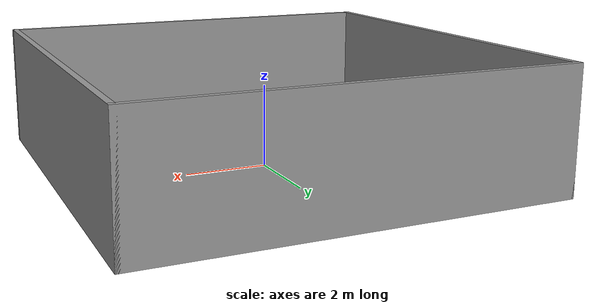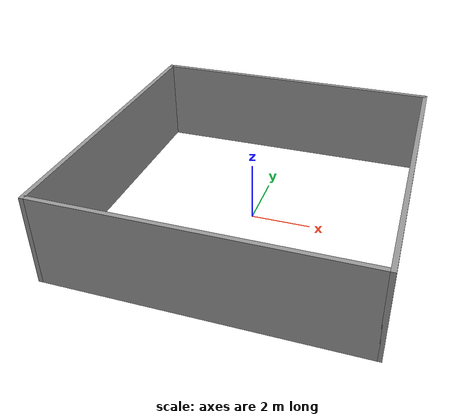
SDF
<?xml version='1.0'?>
<sdf version='1.6'>
  <model name='test_laserfilter'>
    <pose frame=''>0 0 0 0 -0 0</pose>
    <link name='Wall_10'>
      <collision name='Wall_10_Collision'>
        <geometry>
          <box>
            <size>10.15 0.15 3</size>
          </box>
        </geometry>
        <pose frame=''>0 0 1.5 0 -0 0</pose>
      </collision>
      <visual name='Wall_10_Visual'>
        <pose frame=''>0 0 1.5 0 -0 0</pose>
        <geometry>
          <box>
            <size>10.15 0.15 3</size>
          </box>
        </geometry>
        <material>
          <script>
            <uri>file://media/materials/scripts/gazebo.material</uri>
            <name>Gazebo/Grey</name>
          </script>
          <ambient>1 1 1 1</ambient>
        </material>
        <meta>
          <layer>0</layer>
        </meta>
      </visual>
      <pose frame=''>0 5 0 0 -0 0</pose>
    </link>
    <link name='Wall_12'>
      <collision name='Wall_12_Collision'>
        <geometry>
          <box>
            <size>10.15 0.15 3</size>
          </box>
        </geometry>
        <pose frame=''>0 0 1.5 0 -0 0</pose>
      </collision>
      <visual name='Wall_12_Visual'>
        <pose frame=''>0 0 1.5 0 -0 0</pose>
        <geometry>
          <box>
            <size>10.15 0.15 3</size>
          </box>
        </geometry>
        <material>
          <script>
            <uri>file://media/materials/scripts/gazebo.material</uri>
            <name>Gazebo/Grey</name>
          </script>
          <ambient>1 1 1 1</ambient>
        </material>
        <meta>
          <layer>0</layer>
        </meta>
      </visual>
      <pose frame=''>5 0 0 0 -0 -1.5708</pose>
    </link>
    <link name='Wall_6'>
      <collision name='Wall_6_Collision'>
        <geometry>
          <box>
            <size>10.15 0.15 3</size>
          </box>
        </geometry>
        <pose frame=''>0 0 1.5 0 -0 0</pose>
      </collision>
      <visual name='Wall_6_Visual'>
        <pose frame=''>0 0 1.5 0 -0 0</pose>
        <geometry>
          <box>
            <size>10.15 0.15 3</size>
          </box>
        </geometry>
        <material>
          <script>
            <uri>file://media/materials/scripts/gazebo.material</uri>
            <name>Gazebo/Grey</name>
          </script>
          <ambient>1 1 1 1</ambient>
        </material>
        <meta>
          <layer>0</layer>
        </meta>
      </visual>
      <pose frame=''>0 -5 0 0 -0 0</pose>
    </link>
    <link name='Wall_8'>
      <collision name='Wall_8_Collision'>
        <geometry>
          <box>
            <size>10.15 0.15 3</size>
          </box>
        </geometry>
        <pose frame=''>0 0 1.5 0 -0 0</pose>
      </collision>
      <visual name='Wall_8_Visual'>
        <pose frame=''>0 0 1.5 0 -0 0</pose>
        <geometry>
          <box>
            <size>10.15 0.15 3</size>
          </box>
        </geometry>
        <material>
          <script>
            <uri>file://media/materials/scripts/gazebo.material</uri>
            <name>Gazebo/Grey</name>
          </script>
          <ambient>1 1 1 1</ambient>
        </material>
        <meta>
          <layer>0</layer>
        </meta>
      </visual>
      <pose frame=''>-5 0 0 0 -0 1.5708</pose>
    </link>
    <static>1</static>
  </model>
</sdf>
